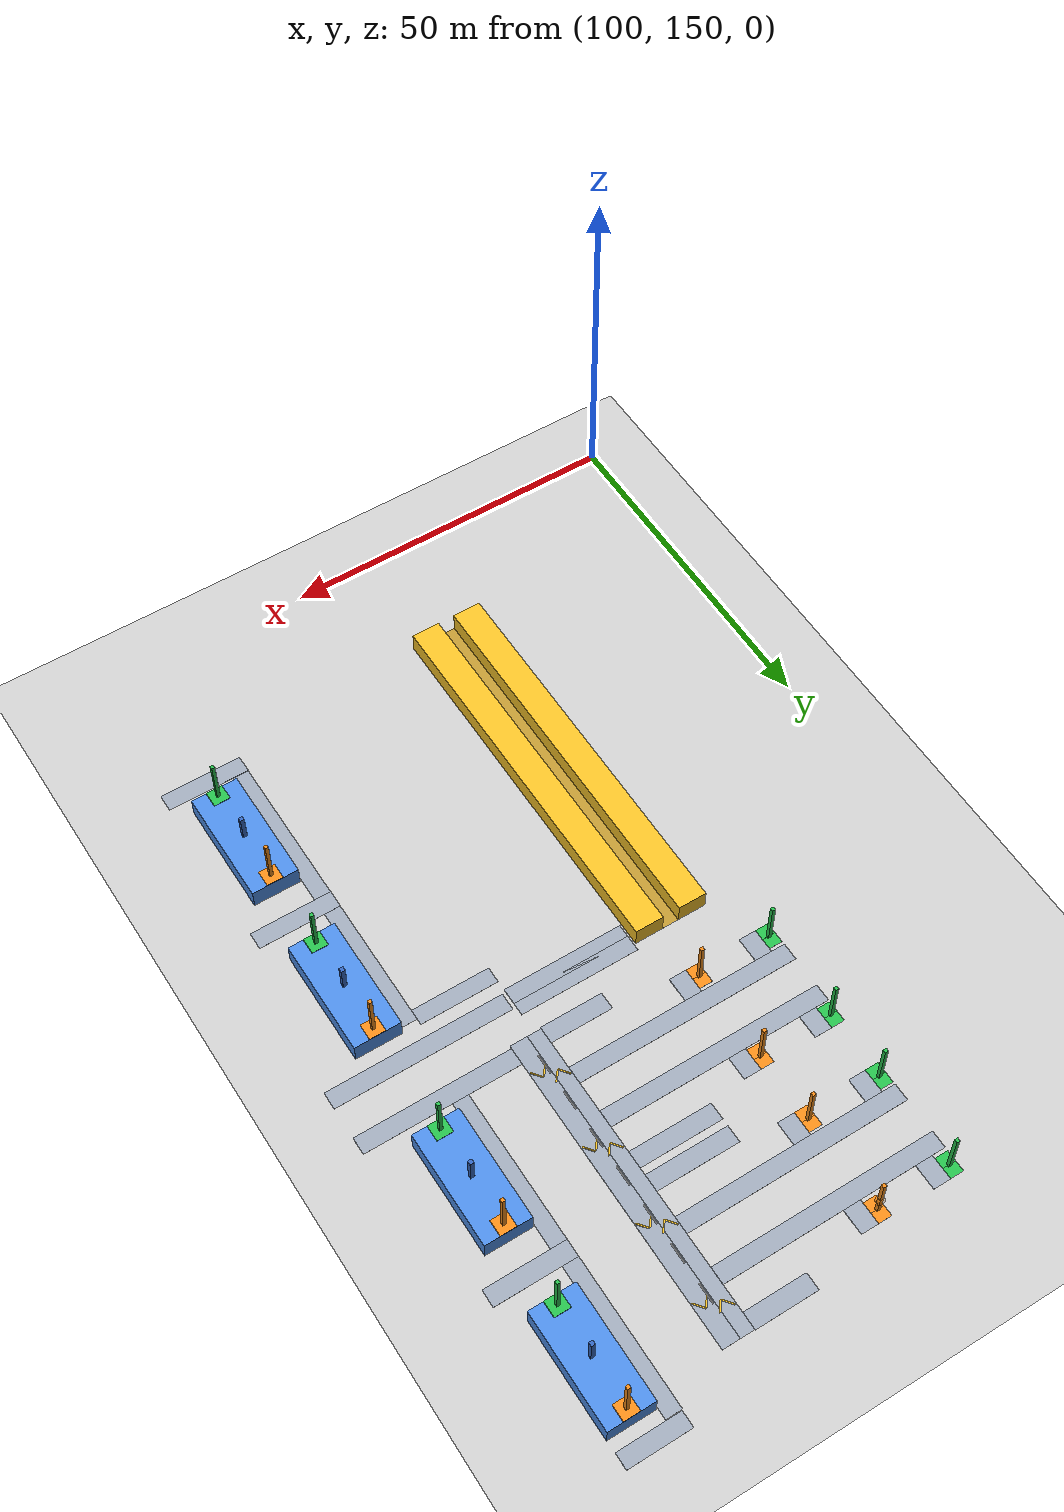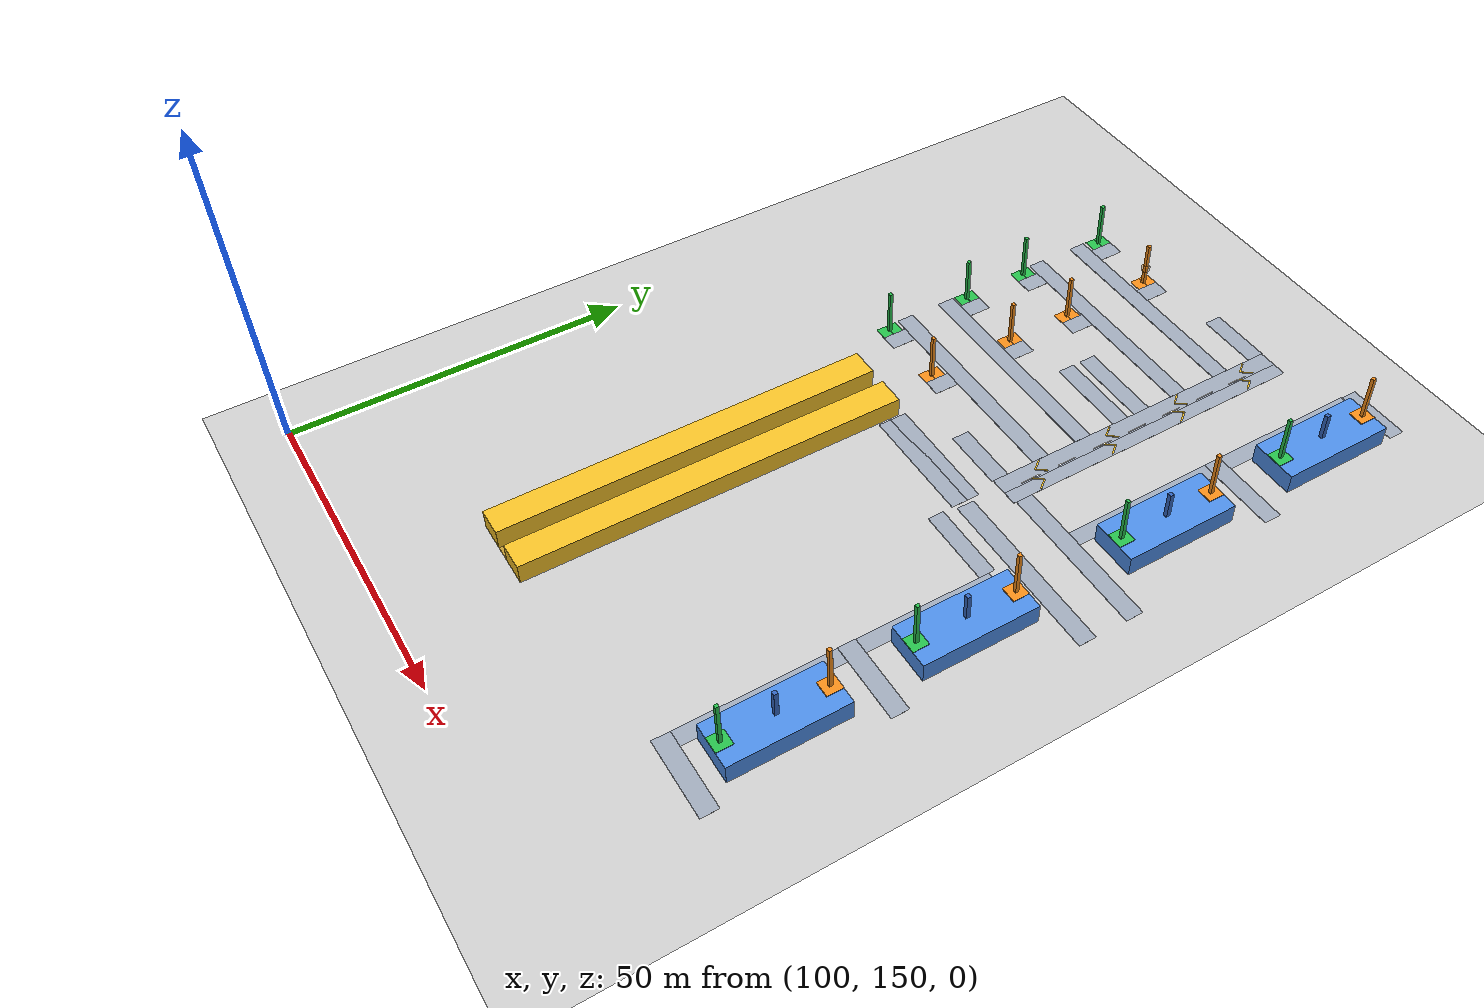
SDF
<sdf version="1.6">
 <world name="cad_plant">
  <include><uri>model://sun</uri></include>
  <include><uri>model://ground_plane</uri></include>
  <model name="m_ASRS_rack_w">
   <static>true</static>
   <pose>132.058 194.720 1.500 0 0 0.0000</pose>
   <link name="link">
    <collision name="c"><geometry><box><size>4.215 56.740 3.000</size></box></geometry></collision>
    <visual name="v">
     <geometry><box><size>4.215 56.740 3.000</size></box></geometry>
     <material><ambient>0.95 0.75 0.15 1</ambient><diffuse>0.95 0.75 0.15 1</diffuse></material>
    </visual>
   </link>
  </model>
  <model name="m_ASRS_rack_e">
   <static>true</static>
   <pose>138.772 194.720 1.500 0 0 0.0000</pose>
   <link name="link">
    <collision name="c"><geometry><box><size>4.215 56.740 3.000</size></box></geometry></collision>
    <visual name="v">
     <geometry><box><size>4.215 56.740 3.000</size></box></geometry>
     <material><ambient>0.95 0.75 0.15 1</ambient><diffuse>0.95 0.75 0.15 1</diffuse></material>
    </visual>
   </link>
  </model>
  <model name="ASRS_crane_aisle">
   <static>true</static>
   <pose>135.415 194.720 0.020 0 0 0.0000</pose>
   <link name="link">
    <visual name="v">
     <geometry><box><size>2.500 56.740 0.020</size></box></geometry>
     <material><ambient>0.75 0.6 0.2 1</ambient><diffuse>0.75 0.6 0.2 1</diffuse></material>
    </visual>
   </link>
  </model>
  <model name="m_GRV1">
   <static>true</static>
   <pose>176.630 182.900 1.500 0 0 0.0000</pose>
   <link name="link">
    <collision name="c"><geometry><box><size>6.880 17.100 3.000</size></box></geometry></collision>
    <visual name="v">
     <geometry><box><size>6.880 17.100 3.000</size></box></geometry>
     <material><ambient>0.3 0.55 0.9 1</ambient><diffuse>0.3 0.55 0.9 1</diffuse></material>
    </visual>
   </link>
  </model>
  <model name="m_GRV2">
   <static>true</static>
   <pose>176.630 209.610 1.500 0 0 0.0000</pose>
   <link name="link">
    <collision name="c"><geometry><box><size>6.880 17.100 3.000</size></box></geometry></collision>
    <visual name="v">
     <geometry><box><size>6.880 17.100 3.000</size></box></geometry>
     <material><ambient>0.3 0.55 0.9 1</ambient><diffuse>0.3 0.55 0.9 1</diffuse></material>
    </visual>
   </link>
  </model>
  <model name="m_GRV3">
   <static>true</static>
   <pose>176.630 240.770 1.500 0 0 0.0000</pose>
   <link name="link">
    <collision name="c"><geometry><box><size>6.880 17.100 3.000</size></box></geometry></collision>
    <visual name="v">
     <geometry><box><size>6.880 17.100 3.000</size></box></geometry>
     <material><ambient>0.3 0.55 0.9 1</ambient><diffuse>0.3 0.55 0.9 1</diffuse></material>
    </visual>
   </link>
  </model>
  <model name="m_GRV4">
   <static>true</static>
   <pose>176.630 267.480 1.500 0 0 0.0000</pose>
   <link name="link">
    <collision name="c"><geometry><box><size>6.880 17.100 3.000</size></box></geometry></collision>
    <visual name="v">
     <geometry><box><size>6.880 17.100 3.000</size></box></geometry>
     <material><ambient>0.3 0.55 0.9 1</ambient><diffuse>0.3 0.55 0.9 1</diffuse></material>
    </visual>
   </link>
  </model>
  <model name="lane_01">
   <static>true</static>
   <pose>141.250 234.830 0.020 0 0 0.0000</pose>
   <link name="link">
    <visual name="v">
     <geometry><box><size>33.380 2.600 0.020</size></box></geometry>
     <material><ambient>0.62 0.66 0.72 1</ambient><diffuse>0.62 0.66 0.72 1</diffuse></material>
    </visual>
   </link>
  </model>
  <model name="lane_02">
   <static>true</static>
   <pose>141.250 241.980 0.020 0 0 0.0000</pose>
   <link name="link">
    <visual name="v">
     <geometry><box><size>33.380 2.600 0.020</size></box></geometry>
     <material><ambient>0.62 0.66 0.72 1</ambient><diffuse>0.62 0.66 0.72 1</diffuse></material>
    </visual>
   </link>
  </model>
  <model name="lane_03">
   <static>true</static>
   <pose>141.250 258.700 0.020 0 0 0.0000</pose>
   <link name="link">
    <visual name="v">
     <geometry><box><size>33.380 2.600 0.020</size></box></geometry>
     <material><ambient>0.62 0.66 0.72 1</ambient><diffuse>0.62 0.66 0.72 1</diffuse></material>
    </visual>
   </link>
  </model>
  <model name="lane_04">
   <static>true</static>
   <pose>141.250 266.360 0.020 0 0 0.0000</pose>
   <link name="link">
    <visual name="v">
     <geometry><box><size>33.380 2.600 0.020</size></box></geometry>
     <material><ambient>0.62 0.66 0.72 1</ambient><diffuse>0.62 0.66 0.72 1</diffuse></material>
    </visual>
   </link>
  </model>
  <model name="lane_05">
   <static>true</static>
   <pose>150.050 220.920 0.020 0 0 0.0000</pose>
   <link name="link">
    <visual name="v">
     <geometry><box><size>17.840 2.400 0.020</size></box></geometry>
     <material><ambient>0.62 0.66 0.72 1</ambient><diffuse>0.62 0.66 0.72 1</diffuse></material>
    </visual>
   </link>
  </model>
  <model name="lane_06">
   <static>true</static>
   <pose>150.050 222.820 0.020 0 0 0.0000</pose>
   <link name="link">
    <visual name="v">
     <geometry><box><size>17.840 2.400 0.020</size></box></geometry>
     <material><ambient>0.62 0.66 0.72 1</ambient><diffuse>0.62 0.66 0.72 1</diffuse></material>
    </visual>
   </link>
  </model>
  <model name="lane_07">
   <static>true</static>
   <pose>151.755 248.510 0.020 0 0 0.0000</pose>
   <link name="link">
    <visual name="v">
     <geometry><box><size>12.370 2.600 0.020</size></box></geometry>
     <material><ambient>0.62 0.66 0.72 1</ambient><diffuse>0.62 0.66 0.72 1</diffuse></material>
    </visual>
   </link>
  </model>
  <model name="lane_08">
   <static>true</static>
   <pose>151.755 252.170 0.020 0 0 0.0000</pose>
   <link name="link">
    <visual name="v">
     <geometry><box><size>12.370 2.600 0.020</size></box></geometry>
     <material><ambient>0.62 0.66 0.72 1</ambient><diffuse>0.62 0.66 0.72 1</diffuse></material>
    </visual>
   </link>
  </model>
  <model name="lane_09">
   <static>true</static>
   <pose>153.285 228.130 0.020 0 0 0.0000</pose>
   <link name="link">
    <visual name="v">
     <geometry><box><size>9.310 2.600 0.020</size></box></geometry>
     <material><ambient>0.62 0.66 0.72 1</ambient><diffuse>0.62 0.66 0.72 1</diffuse></material>
    </visual>
   </link>
  </model>
  <model name="lane_10">
   <static>true</static>
   <pose>153.285 273.030 0.020 0 0 0.0000</pose>
   <link name="link">
    <visual name="v">
     <geometry><box><size>9.310 2.600 0.020</size></box></geometry>
     <material><ambient>0.62 0.66 0.72 1</ambient><diffuse>0.62 0.66 0.72 1</diffuse></material>
    </visual>
   </link>
  </model>
  <model name="lane_11">
   <static>true</static>
   <pose>164.775 217.120 0.020 0 0 0.0000</pose>
   <link name="link">
    <visual name="v">
     <geometry><box><size>11.610 2.400 0.020</size></box></geometry>
     <material><ambient>0.62 0.66 0.72 1</ambient><diffuse>0.62 0.66 0.72 1</diffuse></material>
    </visual>
   </link>
  </model>
  <model name="lane_12">
   <static>true</static>
   <pose>172.630 221.440 0.020 0 0 0.0000</pose>
   <link name="link">
    <visual name="v">
     <geometry><box><size>26.300 2.600 0.020</size></box></geometry>
     <material><ambient>0.62 0.66 0.72 1</ambient><diffuse>0.62 0.66 0.72 1</diffuse></material>
    </visual>
   </link>
  </model>
  <model name="lane_13">
   <static>true</static>
   <pose>174.210 228.720 0.020 0 0 0.0000</pose>
   <link name="link">
    <visual name="v">
     <geometry><box><size>23.140 2.600 0.020</size></box></geometry>
     <material><ambient>0.62 0.66 0.72 1</ambient><diffuse>0.62 0.66 0.72 1</diffuse></material>
    </visual>
   </link>
  </model>
  <model name="lane_14">
   <static>true</static>
   <pose>175.340 278.910 0.020 0 0 0.0000</pose>
   <link name="link">
    <visual name="v">
     <geometry><box><size>9.300 2.400 0.020</size></box></geometry>
     <material><ambient>0.62 0.66 0.72 1</ambient><diffuse>0.62 0.66 0.72 1</diffuse></material>
    </visual>
   </link>
  </model>
  <model name="lane_23">
   <static>true</static>
   <pose>159.240 250.635 0.020 0 0 0.0000</pose>
   <link name="link">
    <visual name="v">
     <geometry><box><size>2.600 47.230 0.020</size></box></geometry>
     <material><ambient>0.62 0.66 0.72 1</ambient><diffuse>0.62 0.66 0.72 1</diffuse></material>
    </visual>
   </link>
  </model>
  <model name="lane_24">
   <static>true</static>
   <pose>161.340 250.635 0.020 0 0 0.0000</pose>
   <link name="link">
    <visual name="v">
     <geometry><box><size>2.600 47.230 0.020</size></box></geometry>
     <material><ambient>0.62 0.66 0.72 1</ambient><diffuse>0.62 0.66 0.72 1</diffuse></material>
    </visual>
   </link>
  </model>
  <model name="lane_25">
   <static>true</static>
   <pose>171.750 253.815 0.020 0 0 0.0000</pose>
   <link name="link">
    <visual name="v">
     <geometry><box><size>2.400 47.590 0.020</size></box></geometry>
     <material><ambient>0.62 0.66 0.72 1</ambient><diffuse>0.62 0.66 0.72 1</diffuse></material>
    </visual>
   </link>
  </model>
  <model name="lane_26">
   <static>true</static>
   <pose>171.780 193.620 0.020 0 0 0.0000</pose>
   <link name="link">
    <visual name="v">
     <geometry><box><size>2.400 47.580 0.020</size></box></geometry>
     <material><ambient>0.62 0.66 0.72 1</ambient><diffuse>0.62 0.66 0.72 1</diffuse></material>
    </visual>
   </link>
  </model>
  <model name="road1_div01">
   <static>true</static>
   <pose>160.290 231.520 0.080 0 0 0.0000</pose>
   <link name="link">
    <visual name="v">
     <geometry><box><size>0.160 3.000 0.020</size></box></geometry>
     <material><ambient>0.97 0.97 0.97 1</ambient><diffuse>0.97 0.97 0.97 1</diffuse></material>
    </visual>
   </link>
  </model>
  <model name="road1_div02">
   <static>true</static>
   <pose>160.290 237.520 0.080 0 0 0.0000</pose>
   <link name="link">
    <visual name="v">
     <geometry><box><size>0.160 3.000 0.020</size></box></geometry>
     <material><ambient>0.97 0.97 0.97 1</ambient><diffuse>0.97 0.97 0.97 1</diffuse></material>
    </visual>
   </link>
  </model>
  <model name="road1_div03">
   <static>true</static>
   <pose>160.290 243.520 0.080 0 0 0.0000</pose>
   <link name="link">
    <visual name="v">
     <geometry><box><size>0.160 3.000 0.020</size></box></geometry>
     <material><ambient>0.97 0.97 0.97 1</ambient><diffuse>0.97 0.97 0.97 1</diffuse></material>
    </visual>
   </link>
  </model>
  <model name="road1_div04">
   <static>true</static>
   <pose>160.290 249.520 0.080 0 0 0.0000</pose>
   <link name="link">
    <visual name="v">
     <geometry><box><size>0.160 3.000 0.020</size></box></geometry>
     <material><ambient>0.97 0.97 0.97 1</ambient><diffuse>0.97 0.97 0.97 1</diffuse></material>
    </visual>
   </link>
  </model>
  <model name="road1_div05">
   <static>true</static>
   <pose>160.290 255.520 0.080 0 0 0.0000</pose>
   <link name="link">
    <visual name="v">
     <geometry><box><size>0.160 3.000 0.020</size></box></geometry>
     <material><ambient>0.97 0.97 0.97 1</ambient><diffuse>0.97 0.97 0.97 1</diffuse></material>
    </visual>
   </link>
  </model>
  <model name="road1_div06">
   <static>true</static>
   <pose>160.290 261.520 0.080 0 0 0.0000</pose>
   <link name="link">
    <visual name="v">
     <geometry><box><size>0.160 3.000 0.020</size></box></geometry>
     <material><ambient>0.97 0.97 0.97 1</ambient><diffuse>0.97 0.97 0.97 1</diffuse></material>
    </visual>
   </link>
  </model>
  <model name="road1_div07">
   <static>true</static>
   <pose>160.290 267.520 0.080 0 0 0.0000</pose>
   <link name="link">
    <visual name="v">
     <geometry><box><size>0.160 3.000 0.020</size></box></geometry>
     <material><ambient>0.97 0.97 0.97 1</ambient><diffuse>0.97 0.97 0.97 1</diffuse></material>
    </visual>
   </link>
  </model>
  <model name="road1a_arw01l">
   <static>true</static>
   <pose>158.686 233.729 0.070 0 0 8.5172</pose>
   <link name="link">
    <visual name="v">
     <geometry><box><size>1.800 0.200 0.020</size></box></geometry>
     <material><ambient>0.95 0.75 0.15 1</ambient><diffuse>0.95 0.75 0.15 1</diffuse></material>
    </visual>
   </link>
  </model>
  <model name="road1a_arw01r">
   <static>true</static>
   <pose>159.794 233.729 0.070 0 0 7.1908</pose>
   <link name="link">
    <visual name="v">
     <geometry><box><size>1.800 0.200 0.020</size></box></geometry>
     <material><ambient>0.95 0.75 0.15 1</ambient><diffuse>0.95 0.75 0.15 1</diffuse></material>
    </visual>
   </link>
  </model>
  <model name="road1a_arw02l">
   <static>true</static>
   <pose>158.686 245.729 0.070 0 0 8.5172</pose>
   <link name="link">
    <visual name="v">
     <geometry><box><size>1.800 0.200 0.020</size></box></geometry>
     <material><ambient>0.95 0.75 0.15 1</ambient><diffuse>0.95 0.75 0.15 1</diffuse></material>
    </visual>
   </link>
  </model>
  <model name="road1a_arw02r">
   <static>true</static>
   <pose>159.794 245.729 0.070 0 0 7.1908</pose>
   <link name="link">
    <visual name="v">
     <geometry><box><size>1.800 0.200 0.020</size></box></geometry>
     <material><ambient>0.95 0.75 0.15 1</ambient><diffuse>0.95 0.75 0.15 1</diffuse></material>
    </visual>
   </link>
  </model>
  <model name="road1a_arw03l">
   <static>true</static>
   <pose>158.686 257.729 0.070 0 0 8.5172</pose>
   <link name="link">
    <visual name="v">
     <geometry><box><size>1.800 0.200 0.020</size></box></geometry>
     <material><ambient>0.95 0.75 0.15 1</ambient><diffuse>0.95 0.75 0.15 1</diffuse></material>
    </visual>
   </link>
  </model>
  <model name="road1a_arw03r">
   <static>true</static>
   <pose>159.794 257.729 0.070 0 0 7.1908</pose>
   <link name="link">
    <visual name="v">
     <geometry><box><size>1.800 0.200 0.020</size></box></geometry>
     <material><ambient>0.95 0.75 0.15 1</ambient><diffuse>0.95 0.75 0.15 1</diffuse></material>
    </visual>
   </link>
  </model>
  <model name="road1a_arw04l">
   <static>true</static>
   <pose>158.686 269.729 0.070 0 0 8.5172</pose>
   <link name="link">
    <visual name="v">
     <geometry><box><size>1.800 0.200 0.020</size></box></geometry>
     <material><ambient>0.95 0.75 0.15 1</ambient><diffuse>0.95 0.75 0.15 1</diffuse></material>
    </visual>
   </link>
  </model>
  <model name="road1a_arw04r">
   <static>true</static>
   <pose>159.794 269.729 0.070 0 0 7.1908</pose>
   <link name="link">
    <visual name="v">
     <geometry><box><size>1.800 0.200 0.020</size></box></geometry>
     <material><ambient>0.95 0.75 0.15 1</ambient><diffuse>0.95 0.75 0.15 1</diffuse></material>
    </visual>
   </link>
  </model>
  <model name="road1b_arw01l">
   <static>true</static>
   <pose>161.894 232.311 0.070 0 0 5.3756</pose>
   <link name="link">
    <visual name="v">
     <geometry><box><size>1.800 0.200 0.020</size></box></geometry>
     <material><ambient>0.95 0.75 0.15 1</ambient><diffuse>0.95 0.75 0.15 1</diffuse></material>
    </visual>
   </link>
  </model>
  <model name="road1b_arw01r">
   <static>true</static>
   <pose>160.786 232.311 0.070 0 0 4.0492</pose>
   <link name="link">
    <visual name="v">
     <geometry><box><size>1.800 0.200 0.020</size></box></geometry>
     <material><ambient>0.95 0.75 0.15 1</ambient><diffuse>0.95 0.75 0.15 1</diffuse></material>
    </visual>
   </link>
  </model>
  <model name="road1b_arw02l">
   <static>true</static>
   <pose>161.894 244.311 0.070 0 0 5.3756</pose>
   <link name="link">
    <visual name="v">
     <geometry><box><size>1.800 0.200 0.020</size></box></geometry>
     <material><ambient>0.95 0.75 0.15 1</ambient><diffuse>0.95 0.75 0.15 1</diffuse></material>
    </visual>
   </link>
  </model>
  <model name="road1b_arw02r">
   <static>true</static>
   <pose>160.786 244.311 0.070 0 0 4.0492</pose>
   <link name="link">
    <visual name="v">
     <geometry><box><size>1.800 0.200 0.020</size></box></geometry>
     <material><ambient>0.95 0.75 0.15 1</ambient><diffuse>0.95 0.75 0.15 1</diffuse></material>
    </visual>
   </link>
  </model>
  <model name="road1b_arw03l">
   <static>true</static>
   <pose>161.894 256.311 0.070 0 0 5.3756</pose>
   <link name="link">
    <visual name="v">
     <geometry><box><size>1.800 0.200 0.020</size></box></geometry>
     <material><ambient>0.95 0.75 0.15 1</ambient><diffuse>0.95 0.75 0.15 1</diffuse></material>
    </visual>
   </link>
  </model>
  <model name="road1b_arw03r">
   <static>true</static>
   <pose>160.786 256.311 0.070 0 0 4.0492</pose>
   <link name="link">
    <visual name="v">
     <geometry><box><size>1.800 0.200 0.020</size></box></geometry>
     <material><ambient>0.95 0.75 0.15 1</ambient><diffuse>0.95 0.75 0.15 1</diffuse></material>
    </visual>
   </link>
  </model>
  <model name="road1b_arw04l">
   <static>true</static>
   <pose>161.894 268.311 0.070 0 0 5.3756</pose>
   <link name="link">
    <visual name="v">
     <geometry><box><size>1.800 0.200 0.020</size></box></geometry>
     <material><ambient>0.95 0.75 0.15 1</ambient><diffuse>0.95 0.75 0.15 1</diffuse></material>
    </visual>
   </link>
  </model>
  <model name="road1b_arw04r">
   <static>true</static>
   <pose>160.786 268.311 0.070 0 0 4.0492</pose>
   <link name="link">
    <visual name="v">
     <geometry><box><size>1.800 0.200 0.020</size></box></geometry>
     <material><ambient>0.95 0.75 0.15 1</ambient><diffuse>0.95 0.75 0.15 1</diffuse></material>
    </visual>
   </link>
  </model>
  <model name="spur_CTR1">
   <static>true</static>
   <pose>141.250 234.830 0.040 0 0 0.0000</pose>
   <link name="link">
    <visual name="v">
     <geometry><box><size>33.380 2.600 0.020</size></box></geometry>
     <material><ambient>0.62 0.66 0.72 1</ambient><diffuse>0.62 0.66 0.72 1</diffuse></material>
    </visual>
   </link>
  </model>
  <model name="spur_CTR2">
   <static>true</static>
   <pose>141.250 241.980 0.040 0 0 0.0000</pose>
   <link name="link">
    <visual name="v">
     <geometry><box><size>33.380 2.600 0.020</size></box></geometry>
     <material><ambient>0.62 0.66 0.72 1</ambient><diffuse>0.62 0.66 0.72 1</diffuse></material>
    </visual>
   </link>
  </model>
  <model name="spur_CTR3">
   <static>true</static>
   <pose>141.250 258.700 0.040 0 0 0.0000</pose>
   <link name="link">
    <visual name="v">
     <geometry><box><size>33.380 2.600 0.020</size></box></geometry>
     <material><ambient>0.62 0.66 0.72 1</ambient><diffuse>0.62 0.66 0.72 1</diffuse></material>
    </visual>
   </link>
  </model>
  <model name="spur_CTR4">
   <static>true</static>
   <pose>141.250 266.360 0.040 0 0 0.0000</pose>
   <link name="link">
    <visual name="v">
     <geometry><box><size>33.380 2.600 0.020</size></box></geometry>
     <material><ambient>0.62 0.66 0.72 1</ambient><diffuse>0.62 0.66 0.72 1</diffuse></material>
    </visual>
   </link>
  </model>
  <model name="link_CTR1_ld">
   <static>true</static>
   <pose>127.880 231.697 0.040 0 0 0.0000</pose>
   <link name="link">
    <visual name="v">
     <geometry><box><size>2.600 3.665 0.020</size></box></geometry>
     <material><ambient>0.62 0.66 0.72 1</ambient><diffuse>0.62 0.66 0.72 1</diffuse></material>
    </visual>
   </link>
  </model>
  <model name="link_CTR1_uld">
   <static>true</static>
   <pose>138.880 231.697 0.040 0 0 0.0000</pose>
   <link name="link">
    <visual name="v">
     <geometry><box><size>2.600 3.665 0.020</size></box></geometry>
     <material><ambient>0.62 0.66 0.72 1</ambient><diffuse>0.62 0.66 0.72 1</diffuse></material>
    </visual>
   </link>
  </model>
  <model name="link_CTR2_ld">
   <static>true</static>
   <pose>127.880 245.012 0.040 0 0 0.0000</pose>
   <link name="link">
    <visual name="v">
     <geometry><box><size>2.600 3.465 0.020</size></box></geometry>
     <material><ambient>0.62 0.66 0.72 1</ambient><diffuse>0.62 0.66 0.72 1</diffuse></material>
    </visual>
   </link>
  </model>
  <model name="link_CTR2_uld">
   <static>true</static>
   <pose>138.880 245.012 0.040 0 0 0.0000</pose>
   <link name="link">
    <visual name="v">
     <geometry><box><size>2.600 3.465 0.020</size></box></geometry>
     <material><ambient>0.62 0.66 0.72 1</ambient><diffuse>0.62 0.66 0.72 1</diffuse></material>
    </visual>
   </link>
  </model>
  <model name="link_CTR3_ld">
   <static>true</static>
   <pose>127.880 255.623 0.040 0 0 0.0000</pose>
   <link name="link">
    <visual name="v">
     <geometry><box><size>2.600 3.555 0.020</size></box></geometry>
     <material><ambient>0.62 0.66 0.72 1</ambient><diffuse>0.62 0.66 0.72 1</diffuse></material>
    </visual>
   </link>
  </model>
  <model name="link_CTR3_uld">
   <static>true</static>
   <pose>138.880 255.623 0.040 0 0 0.0000</pose>
   <link name="link">
    <visual name="v">
     <geometry><box><size>2.600 3.555 0.020</size></box></geometry>
     <material><ambient>0.62 0.66 0.72 1</ambient><diffuse>0.62 0.66 0.72 1</diffuse></material>
    </visual>
   </link>
  </model>
  <model name="link_CTR4_ld">
   <static>true</static>
   <pose>127.880 269.513 0.040 0 0 0.0000</pose>
   <link name="link">
    <visual name="v">
     <geometry><box><size>2.600 3.705 0.020</size></box></geometry>
     <material><ambient>0.62 0.66 0.72 1</ambient><diffuse>0.62 0.66 0.72 1</diffuse></material>
    </visual>
   </link>
  </model>
  <model name="link_CTR4_uld">
   <static>true</static>
   <pose>138.880 269.513 0.040 0 0 0.0000</pose>
   <link name="link">
    <visual name="v">
     <geometry><box><size>2.600 3.705 0.020</size></box></geometry>
     <material><ambient>0.62 0.66 0.72 1</ambient><diffuse>0.62 0.66 0.72 1</diffuse></material>
    </visual>
   </link>
  </model>
  <model name="ctr1_ld_0">
   <static>true</static>
   <pose>125.580 230.665 0.020 0 0 0.0000</pose>
   <link name="link">
    <visual name="v">
     <geometry><box><size>2.000 1.600 0.020</size></box></geometry>
     <material><ambient>0.15 0.75 0.3 1</ambient><diffuse>0.15 0.75 0.3 1</diffuse></material>
    </visual>
   </link>
  </model>
  <model name="ctr1_ld_1">
   <static>true</static>
   <pose>125.580 232.275 0.020 0 0 0.0000</pose>
   <link name="link">
    <visual name="v">
     <geometry><box><size>2.000 1.600 0.020</size></box></geometry>
     <material><ambient>0.15 0.75 0.3 1</ambient><diffuse>0.15 0.75 0.3 1</diffuse></material>
    </visual>
   </link>
  </model>
  <model name="ctr1_ld_post">
   <static>true</static>
   <pose>125.580 231.470 3.500 0 0 0.0000</pose>
   <link name="link">
    <visual name="v">
     <geometry><box><size>0.500 0.500 7.000</size></box></geometry>
     <material><ambient>0.15 0.75 0.3 1</ambient><diffuse>0.15 0.75 0.3 1</diffuse></material>
    </visual>
   </link>
  </model>
  <model name="ctr1_uld_0">
   <static>true</static>
   <pose>136.580 230.665 0.020 0 0 0.0000</pose>
   <link name="link">
    <visual name="v">
     <geometry><box><size>2.000 1.600 0.020</size></box></geometry>
     <material><ambient>0.95 0.55 0.1 1</ambient><diffuse>0.95 0.55 0.1 1</diffuse></material>
    </visual>
   </link>
  </model>
  <model name="ctr1_uld_1">
   <static>true</static>
   <pose>136.580 232.275 0.020 0 0 0.0000</pose>
   <link name="link">
    <visual name="v">
     <geometry><box><size>2.000 1.600 0.020</size></box></geometry>
     <material><ambient>0.95 0.55 0.1 1</ambient><diffuse>0.95 0.55 0.1 1</diffuse></material>
    </visual>
   </link>
  </model>
  <model name="ctr1_uld_post">
   <static>true</static>
   <pose>136.580 231.470 3.500 0 0 0.0000</pose>
   <link name="link">
    <visual name="v">
     <geometry><box><size>0.500 0.500 7.000</size></box></geometry>
     <material><ambient>0.95 0.55 0.1 1</ambient><diffuse>0.95 0.55 0.1 1</diffuse></material>
    </visual>
   </link>
  </model>
  <model name="ctr2_ld_0">
   <static>true</static>
   <pose>125.580 244.335 0.020 0 0 0.0000</pose>
   <link name="link">
    <visual name="v">
     <geometry><box><size>2.000 1.600 0.020</size></box></geometry>
     <material><ambient>0.15 0.75 0.3 1</ambient><diffuse>0.15 0.75 0.3 1</diffuse></material>
    </visual>
   </link>
  </model>
  <model name="ctr2_ld_1">
   <static>true</static>
   <pose>125.580 245.945 0.020 0 0 0.0000</pose>
   <link name="link">
    <visual name="v">
     <geometry><box><size>2.000 1.600 0.020</size></box></geometry>
     <material><ambient>0.15 0.75 0.3 1</ambient><diffuse>0.15 0.75 0.3 1</diffuse></material>
    </visual>
   </link>
  </model>
  <model name="ctr2_ld_post">
   <static>true</static>
   <pose>125.580 245.140 3.500 0 0 0.0000</pose>
   <link name="link">
    <visual name="v">
     <geometry><box><size>0.500 0.500 7.000</size></box></geometry>
     <material><ambient>0.15 0.75 0.3 1</ambient><diffuse>0.15 0.75 0.3 1</diffuse></material>
    </visual>
   </link>
  </model>
  <model name="ctr2_uld_0">
   <static>true</static>
   <pose>136.580 244.335 0.020 0 0 0.0000</pose>
   <link name="link">
    <visual name="v">
     <geometry><box><size>2.000 1.600 0.020</size></box></geometry>
     <material><ambient>0.95 0.55 0.1 1</ambient><diffuse>0.95 0.55 0.1 1</diffuse></material>
    </visual>
   </link>
  </model>
  <model name="ctr2_uld_1">
   <static>true</static>
   <pose>136.580 245.945 0.020 0 0 0.0000</pose>
   <link name="link">
    <visual name="v">
     <geometry><box><size>2.000 1.600 0.020</size></box></geometry>
     <material><ambient>0.95 0.55 0.1 1</ambient><diffuse>0.95 0.55 0.1 1</diffuse></material>
    </visual>
   </link>
  </model>
  <model name="ctr2_uld_post">
   <static>true</static>
   <pose>136.580 245.140 3.500 0 0 0.0000</pose>
   <link name="link">
    <visual name="v">
     <geometry><box><size>0.500 0.500 7.000</size></box></geometry>
     <material><ambient>0.95 0.55 0.1 1</ambient><diffuse>0.95 0.55 0.1 1</diffuse></material>
    </visual>
   </link>
  </model>
  <model name="ctr3_ld_0">
   <static>true</static>
   <pose>125.580 254.645 0.020 0 0 0.0000</pose>
   <link name="link">
    <visual name="v">
     <geometry><box><size>2.000 1.600 0.020</size></box></geometry>
     <material><ambient>0.15 0.75 0.3 1</ambient><diffuse>0.15 0.75 0.3 1</diffuse></material>
    </visual>
   </link>
  </model>
  <model name="ctr3_ld_1">
   <static>true</static>
   <pose>125.580 256.255 0.020 0 0 0.0000</pose>
   <link name="link">
    <visual name="v">
     <geometry><box><size>2.000 1.600 0.020</size></box></geometry>
     <material><ambient>0.15 0.75 0.3 1</ambient><diffuse>0.15 0.75 0.3 1</diffuse></material>
    </visual>
   </link>
  </model>
  <model name="ctr3_ld_post">
   <static>true</static>
   <pose>125.580 255.450 3.500 0 0 0.0000</pose>
   <link name="link">
    <visual name="v">
     <geometry><box><size>0.500 0.500 7.000</size></box></geometry>
     <material><ambient>0.15 0.75 0.3 1</ambient><diffuse>0.15 0.75 0.3 1</diffuse></material>
    </visual>
   </link>
  </model>
  <model name="ctr3_uld_0">
   <static>true</static>
   <pose>136.580 254.645 0.020 0 0 0.0000</pose>
   <link name="link">
    <visual name="v">
     <geometry><box><size>2.000 1.600 0.020</size></box></geometry>
     <material><ambient>0.95 0.55 0.1 1</ambient><diffuse>0.95 0.55 0.1 1</diffuse></material>
    </visual>
   </link>
  </model>
  <model name="ctr3_uld_1">
   <static>true</static>
   <pose>136.580 256.255 0.020 0 0 0.0000</pose>
   <link name="link">
    <visual name="v">
     <geometry><box><size>2.000 1.600 0.020</size></box></geometry>
     <material><ambient>0.95 0.55 0.1 1</ambient><diffuse>0.95 0.55 0.1 1</diffuse></material>
    </visual>
   </link>
  </model>
  <model name="ctr3_uld_post">
   <static>true</static>
   <pose>136.580 255.450 3.500 0 0 0.0000</pose>
   <link name="link">
    <visual name="v">
     <geometry><box><size>0.500 0.500 7.000</size></box></geometry>
     <material><ambient>0.95 0.55 0.1 1</ambient><diffuse>0.95 0.55 0.1 1</diffuse></material>
    </visual>
   </link>
  </model>
  <model name="ctr4_ld_0">
   <static>true</static>
   <pose>125.580 268.955 0.020 0 0 0.0000</pose>
   <link name="link">
    <visual name="v">
     <geometry><box><size>2.000 1.600 0.020</size></box></geometry>
     <material><ambient>0.15 0.75 0.3 1</ambient><diffuse>0.15 0.75 0.3 1</diffuse></material>
    </visual>
   </link>
  </model>
  <model name="ctr4_ld_1">
   <static>true</static>
   <pose>125.580 270.565 0.020 0 0 0.0000</pose>
   <link name="link">
    <visual name="v">
     <geometry><box><size>2.000 1.600 0.020</size></box></geometry>
     <material><ambient>0.15 0.75 0.3 1</ambient><diffuse>0.15 0.75 0.3 1</diffuse></material>
    </visual>
   </link>
  </model>
  <model name="ctr4_ld_post">
   <static>true</static>
   <pose>125.580 269.760 3.500 0 0 0.0000</pose>
   <link name="link">
    <visual name="v">
     <geometry><box><size>0.500 0.500 7.000</size></box></geometry>
     <material><ambient>0.15 0.75 0.3 1</ambient><diffuse>0.15 0.75 0.3 1</diffuse></material>
    </visual>
   </link>
  </model>
  <model name="ctr4_uld_0">
   <static>true</static>
   <pose>136.580 268.955 0.020 0 0 0.0000</pose>
   <link name="link">
    <visual name="v">
     <geometry><box><size>2.000 1.600 0.020</size></box></geometry>
     <material><ambient>0.95 0.55 0.1 1</ambient><diffuse>0.95 0.55 0.1 1</diffuse></material>
    </visual>
   </link>
  </model>
  <model name="ctr4_uld_1">
   <static>true</static>
   <pose>136.580 270.565 0.020 0 0 0.0000</pose>
   <link name="link">
    <visual name="v">
     <geometry><box><size>2.000 1.600 0.020</size></box></geometry>
     <material><ambient>0.95 0.55 0.1 1</ambient><diffuse>0.95 0.55 0.1 1</diffuse></material>
    </visual>
   </link>
  </model>
  <model name="ctr4_uld_post">
   <static>true</static>
   <pose>136.580 269.760 3.500 0 0 0.0000</pose>
   <link name="link">
    <visual name="v">
     <geometry><box><size>0.500 0.500 7.000</size></box></geometry>
     <material><ambient>0.95 0.55 0.1 1</ambient><diffuse>0.95 0.55 0.1 1</diffuse></material>
    </visual>
   </link>
  </model>
  <model name="ctr4_uld_inferred">
   <static>true</static>
   <pose>136.580 269.760 2.800 0 0 0.0000</pose>
   <link name="link">
    <visual name="v">
     <geometry><box><size>0.900 0.900 0.900</size></box></geometry>
     <material><ambient>0.95 0.55 0.1 0.35</ambient><diffuse>0.95 0.55 0.1 0.35</diffuse></material>
    </visual>
   </link>
  </model>
  <model name="m_GRV1_label">
   <static>true</static>
   <pose>176.630 182.900 5.000 0 0 0.0000</pose>
   <link name="link">
    <visual name="v">
     <geometry><box><size>0.600 0.600 4.000</size></box></geometry>
     <material><ambient>0.2 0.4 0.75 1</ambient><diffuse>0.2 0.4 0.75 1</diffuse></material>
    </visual>
   </link>
  </model>
  <model name="m_GRV2_label">
   <static>true</static>
   <pose>176.630 209.610 5.000 0 0 0.0000</pose>
   <link name="link">
    <visual name="v">
     <geometry><box><size>0.600 0.600 4.000</size></box></geometry>
     <material><ambient>0.2 0.4 0.75 1</ambient><diffuse>0.2 0.4 0.75 1</diffuse></material>
    </visual>
   </link>
  </model>
  <model name="m_GRV3_label">
   <static>true</static>
   <pose>176.630 240.770 5.000 0 0 0.0000</pose>
   <link name="link">
    <visual name="v">
     <geometry><box><size>0.600 0.600 4.000</size></box></geometry>
     <material><ambient>0.2 0.4 0.75 1</ambient><diffuse>0.2 0.4 0.75 1</diffuse></material>
    </visual>
   </link>
  </model>
  <model name="m_GRV4_label">
   <static>true</static>
   <pose>176.630 267.480 5.000 0 0 0.0000</pose>
   <link name="link">
    <visual name="v">
     <geometry><box><size>0.600 0.600 4.000</size></box></geometry>
     <material><ambient>0.2 0.4 0.75 1</ambient><diffuse>0.2 0.4 0.75 1</diffuse></material>
    </visual>
   </link>
  </model>
  <model name="grv1_ld">
   <static>true</static>
   <pose>176.630 175.550 3.050 0 0 0.0000</pose>
   <link name="link">
    <visual name="v">
     <geometry><box><size>2.400 2.400 0.100</size></box></geometry>
     <material><ambient>0.15 0.75 0.3 1</ambient><diffuse>0.15 0.75 0.3 1</diffuse></material>
    </visual>
   </link>
  </model>
  <model name="grv1_ld_post">
   <static>true</static>
   <pose>176.630 175.550 6.500 0 0 0.0000</pose>
   <link name="link">
    <visual name="v">
     <geometry><box><size>0.500 0.500 7.000</size></box></geometry>
     <material><ambient>0.15 0.75 0.3 1</ambient><diffuse>0.15 0.75 0.3 1</diffuse></material>
    </visual>
   </link>
  </model>
  <model name="grv1_uld">
   <static>true</static>
   <pose>176.630 190.250 3.050 0 0 0.0000</pose>
   <link name="link">
    <visual name="v">
     <geometry><box><size>2.400 2.400 0.100</size></box></geometry>
     <material><ambient>0.95 0.55 0.1 1</ambient><diffuse>0.95 0.55 0.1 1</diffuse></material>
    </visual>
   </link>
  </model>
  <model name="grv1_uld_post">
   <static>true</static>
   <pose>176.630 190.250 6.500 0 0 0.0000</pose>
   <link name="link">
    <visual name="v">
     <geometry><box><size>0.500 0.500 7.000</size></box></geometry>
     <material><ambient>0.95 0.55 0.1 1</ambient><diffuse>0.95 0.55 0.1 1</diffuse></material>
    </visual>
   </link>
  </model>
  <model name="grv2_ld">
   <static>true</static>
   <pose>176.630 202.260 3.050 0 0 0.0000</pose>
   <link name="link">
    <visual name="v">
     <geometry><box><size>2.400 2.400 0.100</size></box></geometry>
     <material><ambient>0.15 0.75 0.3 1</ambient><diffuse>0.15 0.75 0.3 1</diffuse></material>
    </visual>
   </link>
  </model>
  <model name="grv2_ld_post">
   <static>true</static>
   <pose>176.630 202.260 6.500 0 0 0.0000</pose>
   <link name="link">
    <visual name="v">
     <geometry><box><size>0.500 0.500 7.000</size></box></geometry>
     <material><ambient>0.15 0.75 0.3 1</ambient><diffuse>0.15 0.75 0.3 1</diffuse></material>
    </visual>
   </link>
  </model>
  <model name="grv2_uld">
   <static>true</static>
   <pose>176.630 216.960 3.050 0 0 0.0000</pose>
   <link name="link">
    <visual name="v">
     <geometry><box><size>2.400 2.400 0.100</size></box></geometry>
     <material><ambient>0.95 0.55 0.1 1</ambient><diffuse>0.95 0.55 0.1 1</diffuse></material>
    </visual>
   </link>
  </model>
  <model name="grv2_uld_post">
   <static>true</static>
   <pose>176.630 216.960 6.500 0 0 0.0000</pose>
   <link name="link">
    <visual name="v">
     <geometry><box><size>0.500 0.500 7.000</size></box></geometry>
     <material><ambient>0.95 0.55 0.1 1</ambient><diffuse>0.95 0.55 0.1 1</diffuse></material>
    </visual>
   </link>
  </model>
  <model name="grv3_ld">
   <static>true</static>
   <pose>176.630 233.420 3.050 0 0 0.0000</pose>
   <link name="link">
    <visual name="v">
     <geometry><box><size>2.400 2.400 0.100</size></box></geometry>
     <material><ambient>0.15 0.75 0.3 1</ambient><diffuse>0.15 0.75 0.3 1</diffuse></material>
    </visual>
   </link>
  </model>
  <model name="grv3_ld_post">
   <static>true</static>
   <pose>176.630 233.420 6.500 0 0 0.0000</pose>
   <link name="link">
    <visual name="v">
     <geometry><box><size>0.500 0.500 7.000</size></box></geometry>
     <material><ambient>0.15 0.75 0.3 1</ambient><diffuse>0.15 0.75 0.3 1</diffuse></material>
    </visual>
   </link>
  </model>
  <model name="grv3_uld">
   <static>true</static>
   <pose>176.630 248.120 3.050 0 0 0.0000</pose>
   <link name="link">
    <visual name="v">
     <geometry><box><size>2.400 2.400 0.100</size></box></geometry>
     <material><ambient>0.95 0.55 0.1 1</ambient><diffuse>0.95 0.55 0.1 1</diffuse></material>
    </visual>
   </link>
  </model>
  <model name="grv3_uld_post">
   <static>true</static>
   <pose>176.630 248.120 6.500 0 0 0.0000</pose>
   <link name="link">
    <visual name="v">
     <geometry><box><size>0.500 0.500 7.000</size></box></geometry>
     <material><ambient>0.95 0.55 0.1 1</ambient><diffuse>0.95 0.55 0.1 1</diffuse></material>
    </visual>
   </link>
  </model>
  <model name="grv4_ld">
   <static>true</static>
   <pose>176.630 260.130 3.050 0 0 0.0000</pose>
   <link name="link">
    <visual name="v">
     <geometry><box><size>2.400 2.400 0.100</size></box></geometry>
     <material><ambient>0.15 0.75 0.3 1</ambient><diffuse>0.15 0.75 0.3 1</diffuse></material>
    </visual>
   </link>
  </model>
  <model name="grv4_ld_post">
   <static>true</static>
   <pose>176.630 260.130 6.500 0 0 0.0000</pose>
   <link name="link">
    <visual name="v">
     <geometry><box><size>0.500 0.500 7.000</size></box></geometry>
     <material><ambient>0.15 0.75 0.3 1</ambient><diffuse>0.15 0.75 0.3 1</diffuse></material>
    </visual>
   </link>
  </model>
  <model name="grv4_uld">
   <static>true</static>
   <pose>176.630 274.830 3.050 0 0 0.0000</pose>
   <link name="link">
    <visual name="v">
     <geometry><box><size>2.400 2.400 0.100</size></box></geometry>
     <material><ambient>0.95 0.55 0.1 1</ambient><diffuse>0.95 0.55 0.1 1</diffuse></material>
    </visual>
   </link>
  </model>
  <model name="grv4_uld_post">
   <static>true</static>
   <pose>176.630 274.830 6.500 0 0 0.0000</pose>
   <link name="link">
    <visual name="v">
     <geometry><box><size>0.500 0.500 7.000</size></box></geometry>
     <material><ambient>0.95 0.55 0.1 1</ambient><diffuse>0.95 0.55 0.1 1</diffuse></material>
    </visual>
   </link>
  </model>
  <model name="grv_cross0">
   <static>true</static>
   <pose>176.590 170.850 0.040 0 0 0.0000</pose>
   <link name="link">
    <visual name="v">
     <geometry><box><size>12.080 2.600 0.020</size></box></geometry>
     <material><ambient>0.62 0.66 0.72 1</ambient><diffuse>0.62 0.66 0.72 1</diffuse></material>
    </visual>
   </link>
  </model>
  <model name="grv_cross1">
   <static>true</static>
   <pose>176.590 196.255 0.040 0 0 0.0000</pose>
   <link name="link">
    <visual name="v">
     <geometry><box><size>12.080 2.600 0.020</size></box></geometry>
     <material><ambient>0.62 0.66 0.72 1</ambient><diffuse>0.62 0.66 0.72 1</diffuse></material>
    </visual>
   </link>
  </model>
  <model name="grv_cross3">
   <static>true</static>
   <pose>176.590 254.125 0.040 0 0 0.0000</pose>
   <link name="link">
    <visual name="v">
     <geometry><box><size>12.080 2.600 0.020</size></box></geometry>
     <material><ambient>0.62 0.66 0.72 1</ambient><diffuse>0.62 0.66 0.72 1</diffuse></material>
    </visual>
   </link>
  </model>
 </world>
</sdf>
